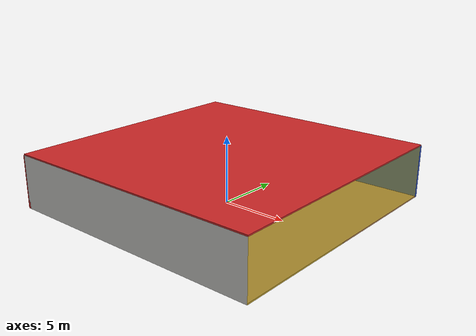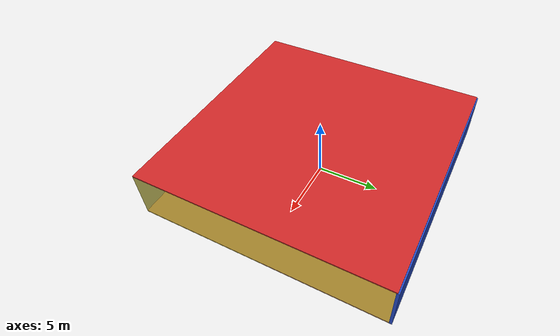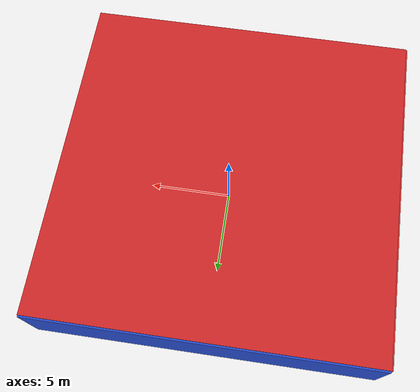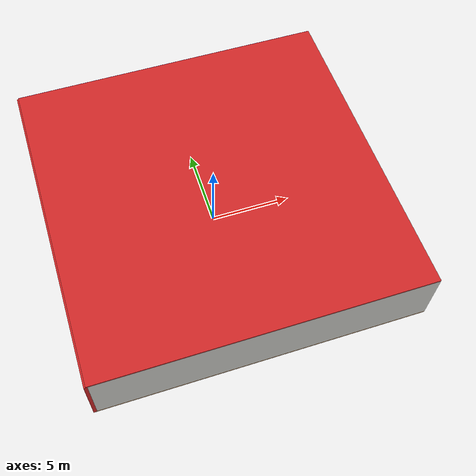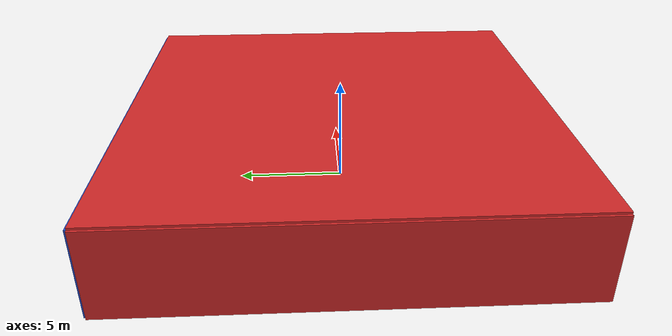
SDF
<sdf version="1.4">
 <world name="default">
  <physics type="ode">
   <max_step_size>0.001</max_step_size>
   <real_time_factor>1</real_time_factor>
   <real_time_update_rate>1000</real_time_update_rate>
   <gravity>0 0 -9.8</gravity>
  </physics>
  <scene><ambient>0.4 0.4 0.4 1</ambient><background>0.7 0.7 0.7 1</background><shadows>1</shadows></scene>
  <model name="Surrounding">
   <static>1</static>
   <link name="Ceiling">
    <collision name="Ceiling_Collision"><geometry><box><size>20 20 0.1</size></box></geometry></collision>
    <visual name="Ceiling_Visual">
     <geometry><box><size>20 20 0.1</size></box></geometry>
     <material>
      <script><uri>file://media/materials/scripts/gazebo.material</uri><name>Gazebo/RedGlow</name></script>
     </material>
    </visual>
    <pose>0 0 4.05 0 0 0</pose>
   </link>
   <link name="Wall_South">
    <collision name="Wall_South_Collision">
     <geometry><box><size>20 0 4</size></box></geometry>
     <pose>0 0 2 0 -0 0</pose>
    </collision>
    <visual name="Wall_South_Visual">
     <pose>0 0 2 0 -0 0</pose>
     <geometry><box><size>20 0 4</size></box></geometry>
     <material>
      <script><uri>file://media/materials/scripts/gazebo.material</uri><name>Gazebo/CeilingTiled</name></script>
     </material>
    </visual>
    <velocity_decay><linear>0</linear><angular>0</angular></velocity_decay>
    <pose>0 -10 0 0 -0 0</pose>
   </link>
   <link name="Wall_East">
    <collision name="Wall_21_Collision">
     <geometry><box><size>20 0 4</size></box></geometry>
     <pose>0 0 2 0 -0 0</pose>
    </collision>
    <visual name="Wall_21_Visual">
     <pose>0 0 2 0 -0 0</pose>
     <geometry><box><size>20 0 4</size></box></geometry>
     <material>
      <script>
       <uri>file://media/materials/scripts/gazebo.material</uri>
       <name>Gazebo/YellowTransparent</name>
      </script>
     </material>
    </visual>
    <velocity_decay><linear>0</linear><angular>0</angular></velocity_decay>
    <pose>10 0 0 0 -0 1.5708</pose>
   </link>
   <link name="Wall_North">
    <collision name="Wall_22_Collision">
     <geometry><box><size>20 0.2 4</size></box></geometry>
     <pose>0 0 2 0 -0 0</pose>
    </collision>
    <visual name="Wall_22_Visual">
     <pose>0 0 2 0 -0 0</pose>
     <geometry><box><size>20 0.2 4</size></box></geometry>
     <material>
      <script><uri>file://media/materials/scripts/gazebo.material</uri><name>Gazebo/BlueGlow</name></script>
     </material>
    </visual>
    <velocity_decay><linear>0</linear><angular>0</angular></velocity_decay>
    <pose>0 10 0 0 -0 0</pose>
   </link>
   <link name="Wall_West">
    <collision name="Wall_23_Collision">
     <geometry><box><size>20 0.2 4</size></box></geometry>
     <pose>0 0 2 0 -0 0</pose>
    </collision>
    <visual name="Wall_23_Visual">
     <pose>0 0 2 0 -0 0</pose>
     <geometry><box><size>20 0.2 4</size></box></geometry>
     <material>
      <script><uri>file://media/materials/scripts/gazebo.material</uri><name>Gazebo/Red</name></script>
     </material>
    </visual>
    <velocity_decay><linear>0</linear><angular>0</angular></velocity_decay>
    <pose>-10 0 0 0 0 -1.5708</pose>
   </link>
   <link name="Ground_link">
    <collision name="collision">
     <pose>0 0 .05 0 -0 0</pose>
     <geometry><box><size>20 20 0.1</size></box></geometry>
    </collision>
    <visual name="visual">
     <pose>0 0 .05 0 -0 0</pose>
     <geometry><box><size>20 20 0.1</size></box></geometry>
     <material>
      <script><uri>file://media/materials/scripts/gazebo.material</uri><name>Gazebo/Wood</name></script>
     </material>
    </visual>
   </link>
   <static>1</static>
  </model>
  <spherical_coordinates>
   <surface_model>EARTH_WGS84</surface_model>
   <latitude_deg>0</latitude_deg>
   <longitude_deg>0</longitude_deg>
   <elevation>0</elevation>
   <heading_deg>0</heading_deg>
  </spherical_coordinates>
  <light name="lightball_0" type="diffuse">
   <diffuse>0.8 0.8 0.8 1</diffuse>
   <specular>0.2 0.2 0.2 1</specular>
   <attenuation>
    <range>100</range>
    <constant>0.7</constant>
    <linear>0.01</linear>
    <quadratic>0.001</quadratic>
   </attenuation>
   <direction>-0.5 0.1 -0.9</direction>
   <pose>-2.45551392178 -5.67843031168 3.80857664689 0 0 0</pose>
  </light>
  <light name="lightball_1" type="diffuse">
   <diffuse>0.8 0.8 0.8 1</diffuse>
   <specular>0.2 0.2 0.2 1</specular>
   <attenuation>
    <range>100</range>
    <constant>0.7</constant>
    <linear>0.01</linear>
    <quadratic>0.001</quadratic>
   </attenuation>
   <direction>-0.5 0.1 -0.9</direction>
   <pose>-4.70579828294 2.34692047769 2.24973969245 0 0 0</pose>
  </light>
  <light name="lightball_2" type="diffuse">
   <diffuse>0.8 0.8 0.8 1</diffuse>
   <specular>0.2 0.2 0.2 1</specular>
   <attenuation>
    <range>100</range>
    <constant>0.7</constant>
    <linear>0.01</linear>
    <quadratic>0.001</quadratic>
   </attenuation>
   <direction>-0.5 0.1 -0.9</direction>
   <pose>-1.70611206905 -9.65437346681 3.05702438341 0 0 0</pose>
  </light>
  <light name="lightball_3" type="diffuse">
   <diffuse>0.8 0.8 0.8 1</diffuse>
   <specular>0.2 0.2 0.2 1</specular>
   <attenuation>
    <range>100</range>
    <constant>0.7</constant>
    <linear>0.01</linear>
    <quadratic>0.001</quadratic>
   </attenuation>
   <direction>-0.5 0.1 -0.9</direction>
   <pose>9.33306138852 -4.93229940903 3.28068905228 0 0 0</pose>
  </light>
  <light name="lightball_4" type="diffuse">
   <diffuse>0.8 0.8 0.8 1</diffuse>
   <specular>0.2 0.2 0.2 1</specular>
   <attenuation>
    <range>100</range>
    <constant>0.7</constant>
    <linear>0.01</linear>
    <quadratic>0.001</quadratic>
   </attenuation>
   <direction>-0.5 0.1 -0.9</direction>
   <pose>9.32688394764 -4.67168847676 1.30619660619 0 0 0</pose>
  </light>
  <light name="lightball_5" type="diffuse">
   <diffuse>0.8 0.8 0.8 1</diffuse>
   <specular>0.2 0.2 0.2 1</specular>
   <attenuation>
    <range>100</range>
    <constant>0.7</constant>
    <linear>0.01</linear>
    <quadratic>0.001</quadratic>
   </attenuation>
   <direction>-0.5 0.1 -0.9</direction>
   <pose>-3.3456689042 -6.34924394708 2.33113461116 0 0 0</pose>
  </light>
  <light name="lightball_6" type="diffuse">
   <diffuse>0.8 0.8 0.8 1</diffuse>
   <specular>0.2 0.2 0.2 1</specular>
   <attenuation>
    <range>100</range>
    <constant>0.7</constant>
    <linear>0.01</linear>
    <quadratic>0.001</quadratic>
   </attenuation>
   <direction>-0.5 0.1 -0.9</direction>
   <pose>-3.21823684563 -4.18190578987 2.85605066936 0 0 0</pose>
  </light>
  <light name="lightball_7" type="diffuse">
   <diffuse>0.8 0.8 0.8 1</diffuse>
   <specular>0.2 0.2 0.2 1</specular>
   <attenuation>
    <range>100</range>
    <constant>0.7</constant>
    <linear>0.01</linear>
    <quadratic>0.001</quadratic>
   </attenuation>
   <direction>-0.5 0.1 -0.9</direction>
   <pose>0.569520734092 0.323063042823 2.09870471573 0 0 0</pose>
  </light>
  <light name="lightball_8" type="diffuse">
   <diffuse>0.8 0.8 0.8 1</diffuse>
   <specular>0.2 0.2 0.2 1</specular>
   <attenuation>
    <range>100</range>
    <constant>0.7</constant>
    <linear>0.01</linear>
    <quadratic>0.001</quadratic>
   </attenuation>
   <direction>-0.5 0.1 -0.9</direction>
   <pose>2.25057893227 -0.159877404593 3.01019490359 0 0 0</pose>
  </light>
  <light name="lightball_9" type="diffuse">
   <diffuse>0.8 0.8 0.8 1</diffuse>
   <specular>0.2 0.2 0.2 1</specular>
   <attenuation>
    <range>100</range>
    <constant>0.7</constant>
    <linear>0.01</linear>
    <quadratic>0.001</quadratic>
   </attenuation>
   <direction>-0.5 0.1 -0.9</direction>
   <pose>9.52035030242 -9.10969500983 2.08983746698 0 0 0</pose>
  </light>
  <light name="lightball_10" type="diffuse">
   <diffuse>0.8 0.8 0.8 1</diffuse>
   <specular>0.2 0.2 0.2 1</specular>
   <attenuation>
    <range>100</range>
    <constant>0.7</constant>
    <linear>0.01</linear>
    <quadratic>0.001</quadratic>
   </attenuation>
   <direction>-0.5 0.1 -0.9</direction>
   <pose>-1.50185517748 5.35122222508 2.83747230345 0 0 0</pose>
  </light>
  <light name="lightball_11" type="diffuse">
   <diffuse>0.8 0.8 0.8 1</diffuse>
   <specular>0.2 0.2 0.2 1</specular>
   <attenuation>
    <range>100</range>
    <constant>0.7</constant>
    <linear>0.01</linear>
    <quadratic>0.001</quadratic>
   </attenuation>
   <direction>-0.5 0.1 -0.9</direction>
   <pose>1.08355085966 4.08545360851 1.49125031564 0 0 0</pose>
  </light>
  <include><uri>model://cabinet</uri><pose>-4.55602372956 7.65909017893 0 0 0 2.98746292099</pose></include>
  <include><uri>model://cabinet</uri><pose>0.912817039743 -5.06543633395 0 0 0 1.13008429702</pose></include>
 </world>
</sdf>

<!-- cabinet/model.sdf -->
<sdf version="1.5">
  <model name="cabinet">
    <static>true</static>
    <link name="cabinet_bottom_plate">
      <inertial>
        <pose>0 0 -1 0 0 0</pose>
        <inertia>
          <ixx>2.050000</ixx>
          <ixy>0</ixy>
          <ixz>0</ixz>
          <iyy>2.050000</iyy>
          <iyz>0</iyz>
          <izz>2.050000</izz>
        </inertia>
        <mass>25.000000</mass>
      </inertial>
      <collision name="cabinet_bottom_plate_geom">
        <pose>0 0 0.010000 0 0 0</pose>
        <geometry>
          <box>
            <size>0.450000 0.450000 0.020000</size>
          </box>
        </geometry>
      </collision>
      <visual name="cabinet_bottom_plate_geom_visual">
        <pose>0 0 0.010000 0 0 0</pose>
        <geometry>
          <box>
            <size>0.450000 0.450000 0.020000</size>
          </box>
        </geometry>
        <material>
          <script>
            <uri>model://media/materials/scripts/gazebo.material</uri>
            <name>Gazebo/Wood</name>
          </script>
        </material>
      </visual>
      <collision name="cabinet_bottom_plate_geom_cabinet_back_plate">
        <pose>0.235000 0 0.510000 0 0 0</pose>
        <geometry>
          <box>
            <size>0.020000 0.450000 1.020000</size>
          </box>
        </geometry>
      </collision>
      <visual name="cabinet_bottom_plate_geom_cabinet_back_plate_visual">
        <pose>0.235000 0 0.510000 0 0 0</pose>
        <geometry>
          <box>
            <size>0.020000 0.450000 1.020000</size>
          </box>
        </geometry>
        <material>
          <script>
            <uri>model://media/materials/scripts/gazebo.material</uri>
            <name>Gazebo/Wood</name>
          </script>
        </material>
      </visual>
      <collision name="cabinet_bottom_plate_geom_cabinet_left_plate">
        <pose>0 0.235000 0.510000 0 0 0</pose>
        <geometry>
          <box>
            <size>0.450000 0.020000 1.020000</size>
          </box>
        </geometry>
      </collision>
      <visual name="cabinet_bottom_plate_geom_cabinet_left_plate_visual">
        <pose>0 0.235000 0.510000 0 0 0</pose>
        <geometry>
          <box>
            <size>0.450000 0.020000 1.020000</size>
          </box>
        </geometry>
        <material>
          <script>
            <uri>model://media/materials/scripts/gazebo.material</uri>
            <name>Gazebo/Wood</name>
          </script>
        </material>
      </visual>
      <collision name="cabinet_bottom_plate_geom_cabinet_middle_plate">
        <pose>0 0 0.510000 0 0 0</pose>
        <geometry>
          <box>
            <size>0.450000 0.450000 0.020000</size>
          </box>
        </geometry>
      </collision>
      <visual name="cabinet_bottom_plate_geom_cabinet_middle_plate_visual">
        <pose>0 0 0.510000 0 0 0</pose>
        <geometry>
          <box>
            <size>0.450000 0.450000 0.020000</size>
          </box>
        </geometry>
        <material>
          <script>
            <uri>model://media/materials/scripts/gazebo.material</uri>
            <name>Gazebo/Wood</name>
          </script>
        </material>
      </visual>
      <collision name="cabinet_bottom_plate_geom_cabinet_right_plate">
        <pose>0 -0.235000 0.510000 0 0 0</pose>
        <geometry>
          <box>
            <size>0.450000 0.020000 1.020000</size>
          </box>
        </geometry>
      </collision>
      <visual name="cabinet_bottom_plate_geom_cabinet_right_plate_visual">
        <pose>0 -0.235000 0.510000 0 0 0</pose>
        <geometry>
          <box>
            <size>0.450000 0.020000 1.020000</size>
          </box>
        </geometry>
        <material>
          <script>
            <uri>model://media/materials/scripts/gazebo.material</uri>
            <name>Gazebo/Wood</name>
          </script>
        </material>
      </visual>
      <collision name="cabinet_bottom_plate_geom_cabinet_top_plate">
        <pose>0 0 1.010000 0 0 0</pose>
        <geometry>
          <box>
            <size>0.450000 0.450000 0.020000</size>
          </box>
        </geometry>
      </collision>
      <visual name="cabinet_bottom_plate_geom_cabinet_top_plate_visual">
        <pose>0 0 1.010000 0 0 0</pose>
        <geometry>
          <box>
            <size>0.450000 0.450000 0.020000</size>
          </box>
        </geometry>
        <material>
          <script>
            <uri>model://media/materials/scripts/gazebo.material</uri>
            <name>Gazebo/Wood</name>
          </script>
        </material>
      </visual>
    </link>
  </model>
</sdf>
